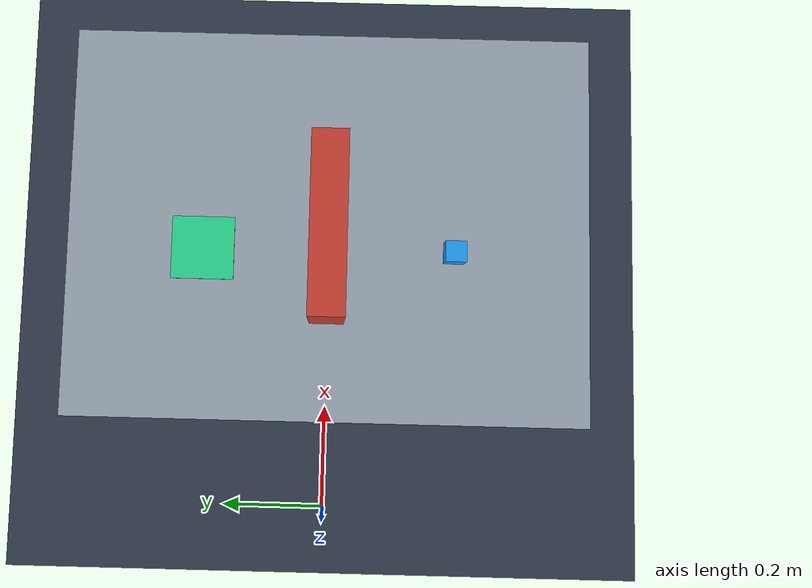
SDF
<sdf version="1.9"><world name="gap_lab"><physics name="1ms" type="ignored"><max_step_size>0.001</max_step_size><real_time_factor>1</real_time_factor></physics><plugin filename="gz-sim-physics-system" name="gz::sim::systems::Physics"/><plugin filename="gz-sim-user-commands-system" name="gz::sim::systems::UserCommands"/><plugin filename="gz-sim-scene-broadcaster-system" name="gz::sim::systems::SceneBroadcaster"/><plugin filename="gz-sim-contact-system" name="gz::sim::systems::Contact"/><plugin filename="gz-sim-sensors-system" name="gz::sim::systems::Sensors"><render_engine>ogre2</render_engine></plugin><plugin filename="libgap_world.so" name="gaplab::World"/><scene><ambient>.65 .65 .65 1</ambient><background>.08 .11 .17 1</background><shadows>true</shadows></scene><light name="sun" type="directional"><pose>0 0 4 0 0 0</pose><diffuse>.9 .9 .9 1</diffuse><direction>-.3 .3 -1</direction></light><model name="floor"><static>true</static><pose>0 0 -0.035 0 0 0</pose><link name="body"><visual name="visual"><geometry><box><size>4 4 .05</size></box></geometry><material><ambient>.19 .23 .3 1</ambient><diffuse>.19 .23 .3 1</diffuse></material></visual><collision name="collision"><geometry><box><size>4 4 .05</size></box></geometry></collision></link></model><model name="table"><static>true</static><pose>.55 0 .1 0 0 0</pose><link name="body"><visual name="visual"><geometry><box><size>.75 1 .1</size></box></geometry><material><ambient>.6 .65 .7 1</ambient><diffuse>.6 .65 .7 1</diffuse></material></visual><collision name="collision"><geometry><box><size>.75 1 .1</size></box></geometry></collision></link></model><model name="barrier"><static>true</static><pose>.52 0 .265 0 0 0</pose><link name="body"><visual name="visual"><geometry><box><size>.32 .065 .23</size></box></geometry><material><ambient>.8 .25 .2 1</ambient><diffuse>.8 .25 .2 1</diffuse></material></visual><collision name="collision"><geometry><box><size>.32 .065 .23</size></box></geometry></collision></link></model><model name="cube"><static>false</static><pose>.5 -.24 .171 0 0 0</pose><link name="body"><inertial><mass>0.08</mass><inertia><ixx>0.00002133</ixx><iyy>0.00002133</iyy><izz>0.00002133</izz></inertia></inertial><visual name="visual"><geometry><box><size>.04 .04 .04</size></box></geometry><material><ambient>.12 .62 .96 1</ambient><diffuse>.12 .62 .96 1</diffuse></material></visual><collision name="collision"><geometry><box><size>.04 .04 .04</size></box></geometry></collision></link></model><model name="target"><static>true</static><pose>.5 .24 .151 0 0 0</pose><link name="body"><visual name="marker"><geometry><box><size>.12 .12 .002</size></box></geometry><material><ambient>.16 .85 .57 1</ambient><diffuse>.16 .85 .57 1</diffuse></material></visual></link></model><model name="overview"><static>true</static><pose>1.55 -1.4 1.4 0 .50 2.25</pose><link name="camera"><sensor name="camera" type="camera"><topic>/gap/camera</topic><always_on>true</always_on><update_rate>8</update_rate><camera><horizontal_fov>1.05</horizontal_fov><image><width>720</width><height>480</height><format>R8G8B8</format></image><clip><near>.02</near><far>10</far></clip></camera></sensor></link></model></world></sdf>
